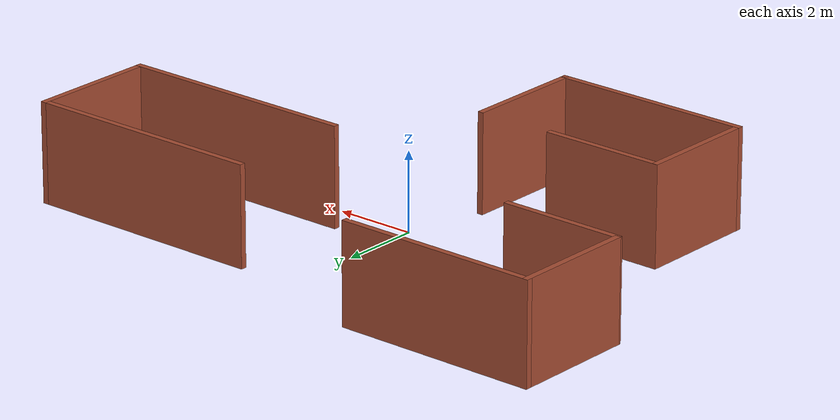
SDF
<?xml version="1.0" ?>
<sdf version="1.5">
  <model name="grey_wall">
    <static>true</static>
   <link name='Wall_11'>
        <collision name='Wall_11_Collision'>
          <geometry>
            <box>
              <size>3.15 0.15 2.5</size>
            </box>
          </geometry>
          <pose>0 0 1.25 0 -0 0</pose>
          <max_contacts>10</max_contacts>
          <surface>
            <contact>
              <ode/>
            </contact>
            <bounce/>
            <friction>
              <torsional>
                <ode/>
              </torsional>
              <ode/>
            </friction>
          </surface>
        </collision>
        <visual name='Wall_11_Visual'>
          <pose>0 0 1.25 0 -0 0</pose>
          <geometry>
            <box>
              <size>3.15 0.15 2.5</size>
            </box>
          </geometry>
          <material>
            <script>
              <uri>file://media/materials/scripts/gazebo.material</uri>
              <name>Gazebo/Bricks</name>
            </script>
            <ambient>1 1 1 1</ambient>
          </material>
          <meta>
            <layer>0</layer>
          </meta>
        </visual>
        <pose>-0.5 -3.5 0 0 -0 1.5708</pose>
        <self_collide>0</self_collide>
        <enable_wind>0</enable_wind>
        <kinematic>0</kinematic>
      </link>
      <link name='Wall_13'>
        <collision name='Wall_13_Collision'>
          <geometry>
            <box>
              <size>5.15 0.15 2.5</size>
            </box>
          </geometry>
          <pose>0 0 1.25 0 -0 0</pose>
          <max_contacts>10</max_contacts>
          <surface>
            <contact>
              <ode/>
            </contact>
            <bounce/>
            <friction>
              <torsional>
                <ode/>
              </torsional>
              <ode/>
            </friction>
          </surface>
        </collision>
        <visual name='Wall_13_Visual'>
          <pose>0 0 1.25 0 -0 0</pose>
          <geometry>
            <box>
              <size>5.15 0.15 2.5</size>
            </box>
          </geometry>
          <material>
            <script>
              <uri>file://media/materials/scripts/gazebo.material</uri>
              <name>Gazebo/Bricks</name>
            </script>
            <ambient>1 1 1 1</ambient>
          </material>
          <meta>
            <layer>0</layer>
          </meta>
        </visual>
        <pose>-5 5 0 0 -0 3.14159</pose>
        <self_collide>0</self_collide>
        <enable_wind>0</enable_wind>
        <kinematic>0</kinematic>
      </link>
      <link name='Wall_15'>
        <collision name='Wall_15_Collision'>
          <geometry>
            <box>
              <size>3.15 0.15 2.5</size>
            </box>
          </geometry>
          <pose>0 0 1.25 0 -0 0</pose>
          <max_contacts>10</max_contacts>
          <surface>
            <contact>
              <ode/>
            </contact>
            <bounce/>
            <friction>
              <torsional>
                <ode/>
              </torsional>
              <ode/>
            </friction>
          </surface>
        </collision>
        <visual name='Wall_15_Visual'>
          <pose>0 0 1.25 0 -0 0</pose>
          <geometry>
            <box>
              <size>3.15 0.15 2.5</size>
            </box>
          </geometry>
          <material>
            <script>
              <uri>file://media/materials/scripts/gazebo.material</uri>
              <name>Gazebo/Bricks</name>
            </script>
            <ambient>1 1 1 1</ambient>
          </material>
          <meta>
            <layer>0</layer>
          </meta>
        </visual>
        <pose>-7.5 3.5 0 0 -0 -1.5708</pose>
        <self_collide>0</self_collide>
        <enable_wind>0</enable_wind>
        <kinematic>0</kinematic>
      </link>
      <link name='Wall_29'>
        <collision name='Wall_29_Collision'>
          <geometry>
            <box>
              <size>3.15 0.15 2.5</size>
            </box>
          </geometry>
          <pose>0 0 1.25 0 -0 0</pose>
          <max_contacts>10</max_contacts>
          <surface>
            <contact>
              <ode/>
            </contact>
            <bounce/>
            <friction>
              <torsional>
                <ode/>
              </torsional>
              <ode/>
            </friction>
          </surface>
        </collision>
        <visual name='Wall_29_Visual'>
          <pose>0 0 1.25 0 -0 0</pose>
          <geometry>
            <box>
              <size>3.15 0.15 2.5</size>
            </box>
          </geometry>
          <material>
            <script>
              <uri>file://media/materials/scripts/gazebo.material</uri>
              <name>Gazebo/Bricks</name>
            </script>
            <ambient>1 1 1 1</ambient>
          </material>
          <meta>
            <layer>0</layer>
          </meta>
        </visual>
        <pose>-6 1.95 0 0 -0 3.14159</pose>
        <self_collide>0</self_collide>
        <enable_wind>0</enable_wind>
        <kinematic>0</kinematic>
      </link>
      <link name='Wall_31'>
        <collision name='Wall_31_Collision'>
          <geometry>
            <box>
              <size>3.15 0.15 2.5</size>
            </box>
          </geometry>
          <pose>0 0 1.25 0 -0 0</pose>
          <max_contacts>10</max_contacts>
          <surface>
            <contact>
              <ode/>
            </contact>
            <bounce/>
            <friction>
              <torsional>
                <ode/>
              </torsional>
              <ode/>
            </friction>
          </surface>
        </collision>
        <visual name='Wall_31_Visual'>
          <pose>0 0 1.25 0 -0 0</pose>
          <geometry>
            <box>
              <size>3.15 0.15 2.5</size>
            </box>
          </geometry>
          <material>
            <script>
              <uri>file://media/materials/scripts/gazebo.material</uri>
              <name>Gazebo/Bricks</name>
            </script>
            <ambient>1 1 1 1</ambient>
          </material>
          <meta>
            <layer>0</layer>
          </meta>
        </visual>
        <pose>7.5 2.5 0 0 -0 -1.5708</pose>
        <self_collide>0</self_collide>
        <enable_wind>0</enable_wind>
        <kinematic>0</kinematic>
      </link>
      <link name='Wall_33'>
        <collision name='Wall_33_Collision'>
          <geometry>
            <box>
              <size>6.15 0.15 2.5</size>
            </box>
          </geometry>
          <pose>0 0 1.25 0 -0 0</pose>
          <max_contacts>10</max_contacts>
          <surface>
            <contact>
              <ode/>
            </contact>
            <bounce/>
            <friction>
              <torsional>
                <ode/>
              </torsional>
              <ode/>
            </friction>
          </surface>
        </collision>
        <visual name='Wall_33_Visual'>
          <pose>0 0 1.25 0 -0 0</pose>
          <geometry>
            <box>
              <size>6.15 0.15 2.5</size>
            </box>
          </geometry>
          <material>
            <script>
              <uri>file://media/materials/scripts/gazebo.material</uri>
              <name>Gazebo/Bricks</name>
            </script>
            <ambient>1 1 1 1</ambient>
          </material>
          <meta>
            <layer>0</layer>
          </meta>
        </visual>
        <pose>4.5 0.844 0 0 -0 0</pose>
        <self_collide>0</self_collide>
        <enable_wind>0</enable_wind>
        <kinematic>0</kinematic>
      </link>
      <link name='Wall_35'>
        <collision name='Wall_35_Collision'>
          <geometry>
            <box>
              <size>6.15 0.15 2.5</size>
            </box>
          </geometry>
          <pose>0 0 1.25 0 -0 0</pose>
          <max_contacts>10</max_contacts>
          <surface>
            <contact>
              <ode/>
            </contact>
            <bounce/>
            <friction>
              <torsional>
                <ode/>
              </torsional>
              <ode/>
            </friction>
          </surface>
        </collision>
        <visual name='Wall_35_Visual'>
          <pose>0 0 1.25 0 -0 0</pose>
          <geometry>
            <box>
              <size>6.15 0.15 2.5</size>
            </box>
          </geometry>
          <material>
            <script>
              <uri>file://media/materials/scripts/gazebo.material</uri>
              <name>Gazebo/Bricks</name>
            </script>
            <ambient>1 1 1 1</ambient>
          </material>
          <meta>
            <layer>0</layer>
          </meta>
        </visual>
        <pose>4.5 4 0 0 -0 3.14159</pose>
        <self_collide>0</self_collide>
        <enable_wind>0</enable_wind>
        <kinematic>0</kinematic>
      </link>
      <link name='Wall_5'>
        <collision name='Wall_5_Collision'>
          <geometry>
            <box>
              <size>5.15 0.15 2.5</size>
            </box>
          </geometry>
          <pose>0 0 1.25 0 -0 0</pose>
          <max_contacts>10</max_contacts>
          <surface>
            <contact>
              <ode/>
            </contact>
            <bounce/>
            <friction>
              <torsional>
                <ode/>
              </torsional>
              <ode/>
            </friction>
          </surface>
        </collision>
        <visual name='Wall_5_Visual'>
          <pose>0 0 1.25 0 -0 0</pose>
          <geometry>
            <box>
              <size>5.15 0.15 2.5</size>
            </box>
          </geometry>
          <material>
            <script>
              <uri>file://media/materials/scripts/gazebo.material</uri>
              <name>Gazebo/Bricks</name>
            </script>
            <ambient>1 1 1 1</ambient>
          </material>
          <meta>
            <layer>0</layer>
          </meta>
        </visual>
        <pose>-3 -5 0 0 -0 3.14159</pose>
        <self_collide>0</self_collide>
        <enable_wind>0</enable_wind>
        <kinematic>0</kinematic>
      </link>
      <link name='Wall_7'>
        <collision name='Wall_7_Collision'>
          <geometry>
            <box>
              <size>3.15 0.15 2.5</size>
            </box>
          </geometry>
          <pose>0 0 1.25 0 -0 0</pose>
          <max_contacts>10</max_contacts>
          <surface>
            <contact>
              <ode/>
            </contact>
            <bounce/>
            <friction>
              <torsional>
                <ode/>
              </torsional>
              <ode/>
            </friction>
          </surface>
        </collision>
        <visual name='Wall_7_Visual'>
          <pose>0 0 1.25 0 -0 0</pose>
          <geometry>
            <box>
              <size>3.15 0.15 2.5</size>
            </box>
          </geometry>
          <material>
            <script>
              <uri>file://media/materials/scripts/gazebo.material</uri>
              <name>Gazebo/Bricks</name>
            </script>
            <ambient>1 1 1 1</ambient>
          </material>
          <meta>
            <layer>0</layer>
          </meta>
        </visual>
        <pose>-5.5 -3.5 0 0 -0 1.5708</pose>
        <self_collide>0</self_collide>
        <enable_wind>0</enable_wind>
        <kinematic>0</kinematic>
      </link>
      <link name='Wall_9'>
        <collision name='Wall_9_Collision'>
          <geometry>
            <box>
              <size>3.15 0.15 2.5</size>
            </box>
          </geometry>
          <pose>0 0 1.25 0 -0 0</pose>
          <max_contacts>10</max_contacts>
          <surface>
            <contact>
              <ode/>
            </contact>
            <bounce/>
            <friction>
              <torsional>
                <ode/>
              </torsional>
              <ode/>
            </friction>
          </surface>
        </collision>
        <visual name='Wall_9_Visual'>
          <pose>0 0 1.25 0 -0 0</pose>
          <geometry>
            <box>
              <size>3.15 0.15 2.5</size>
            </box>
          </geometry>
          <material>
            <script>
              <uri>file://media/materials/scripts/gazebo.material</uri>
              <name>Gazebo/Bricks</name>
            </script>
            <ambient>1 1 1 1</ambient>
          </material>
          <meta>
            <layer>0</layer>
          </meta>
        </visual>
        <pose>-4 -2 0 0 -0 3.14159</pose>
        <self_collide>0</self_collide>
        <enable_wind>0</enable_wind>
        <kinematic>0</kinematic>
      </link>
      <static>1</static>
    </model>

</sdf>
